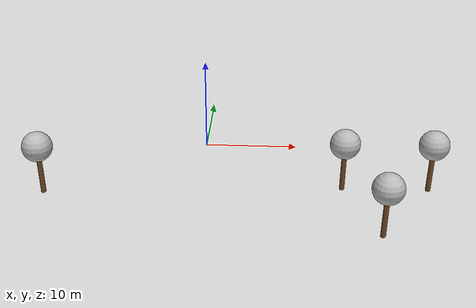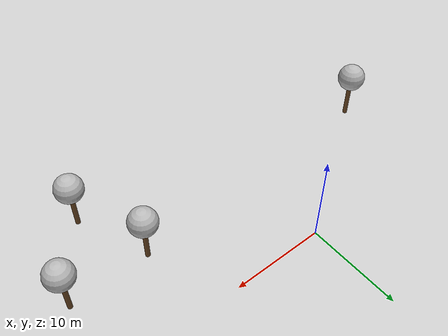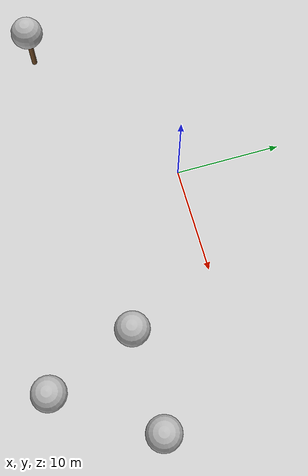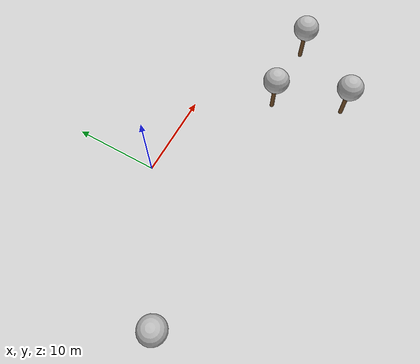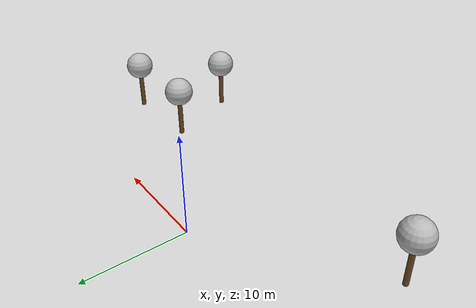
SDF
<sdf version="1.7">
 <world name="default">
  <model name="tree_simple_0_clone_0_clone_clone_4">
   <static>1</static>
   <link name="link">
    <pose>0 0 0.1 0 -0 0</pose>
    <inertial>
     <mass>666</mass>
     <inertia>
      <ixx>0.0861167</ixx>
      <ixy>0</ixy>
      <ixz>0</ixz>
      <iyy>0.0861167</iyy>
      <iyz>0</iyz>
      <izz>0.0861167</izz>
     </inertia>
    </inertial>
    <collision name="collision_trunk">
     <pose>0 0 2 0 -0 0</pose>
     <geometry><cylinder><radius>0.25</radius><length>4</length></cylinder></geometry>
     <surface>
      <contact>
       <poissons_ratio>0.347</poissons_ratio>
       <elastic_modulus>8.8e+09</elastic_modulus>
       <ode><kp>100000</kp><kd>100</kd><max_vel>100</max_vel><min_depth>0.001</min_depth></ode>
      </contact>
      <friction>
       <torsional>
        <coefficient>1</coefficient>
        <use_patch_radius>0</use_patch_radius>
        <surface_radius>0.01</surface_radius>
       </torsional>
      </friction>
     </surface>
    </collision>
    <collision name="collision_treetop">
     <pose>0 0 5.2 0 -0 0</pose>
     <geometry><sphere><radius>1.5</radius></sphere></geometry>
     <surface>
      <contact>
       <poissons_ratio>0.347</poissons_ratio>
       <elastic_modulus>8.8e+09</elastic_modulus>
       <ode><kp>100000</kp><kd>100</kd><max_vel>100</max_vel><min_depth>0.001</min_depth></ode>
      </contact>
      <friction>
       <torsional>
        <coefficient>1</coefficient>
        <use_patch_radius>0</use_patch_radius>
        <surface_radius>0.01</surface_radius>
       </torsional>
      </friction>
     </surface>
    </collision>
    <visual name="trunk">
     <pose>0 0 2 0 -0 0</pose>
     <geometry><cylinder><radius>0.25</radius><length>4</length></cylinder></geometry>
     <material>
      <script>
       <uri>model://tree_simple/scripts</uri>
       <uri>model://tree_simple/materials/textures</uri>
       <name>TreeSimple/Trunk</name>
      </script>
     </material>
    </visual>
    <visual name="treetop">
     <pose>0 0 5.2 0 -0 0</pose>
     <geometry><sphere><radius>1.5</radius></sphere></geometry>
     <material>
      <script>
       <uri>model://tree_simple/scripts</uri>
       <uri>model://tree_simple/materials/textures</uri>
       <name>TreeSimple/Treetop</name>
      </script>
     </material>
    </visual>
   </link>
   <pose>17.7345 -16.0914 0 0 -0 0</pose>
  </model>
  <model name="tree_simple_0_clone_0_clone_clone_9">
   <static>1</static>
   <link name="link">
    <pose>0 0 0.1 0 -0 0</pose>
    <inertial>
     <mass>666</mass>
     <inertia>
      <ixx>0.0861167</ixx>
      <ixy>0</ixy>
      <ixz>0</ixz>
      <iyy>0.0861167</iyy>
      <iyz>0</iyz>
      <izz>0.0861167</izz>
     </inertia>
    </inertial>
    <collision name="collision_trunk">
     <pose>0 0 2 0 -0 0</pose>
     <geometry><cylinder><radius>0.25</radius><length>4</length></cylinder></geometry>
     <surface>
      <contact>
       <poissons_ratio>0.347</poissons_ratio>
       <elastic_modulus>8.8e+09</elastic_modulus>
       <ode><kp>100000</kp><kd>100</kd><max_vel>100</max_vel><min_depth>0.001</min_depth></ode>
      </contact>
      <friction>
       <torsional>
        <coefficient>1</coefficient>
        <use_patch_radius>0</use_patch_radius>
        <surface_radius>0.01</surface_radius>
       </torsional>
      </friction>
     </surface>
    </collision>
    <collision name="collision_treetop">
     <pose>0 0 5.2 0 -0 0</pose>
     <geometry><sphere><radius>1.5</radius></sphere></geometry>
     <surface>
      <contact>
       <poissons_ratio>0.347</poissons_ratio>
       <elastic_modulus>8.8e+09</elastic_modulus>
       <ode><kp>100000</kp><kd>100</kd><max_vel>100</max_vel><min_depth>0.001</min_depth></ode>
      </contact>
      <friction>
       <torsional>
        <coefficient>1</coefficient>
        <use_patch_radius>0</use_patch_radius>
        <surface_radius>0.01</surface_radius>
       </torsional>
      </friction>
     </surface>
    </collision>
    <visual name="trunk">
     <pose>0 0 2 0 -0 0</pose>
     <geometry><cylinder><radius>0.25</radius><length>4</length></cylinder></geometry>
     <material>
      <script>
       <uri>model://tree_simple/scripts</uri>
       <uri>model://tree_simple/materials/textures</uri>
       <name>TreeSimple/Trunk</name>
      </script>
     </material>
    </visual>
    <visual name="treetop">
     <pose>0 0 5.2 0 -0 0</pose>
     <geometry><sphere><radius>1.5</radius></sphere></geometry>
     <material>
      <script>
       <uri>model://tree_simple/scripts</uri>
       <uri>model://tree_simple/materials/textures</uri>
       <name>TreeSimple/Treetop</name>
      </script>
     </material>
    </visual>
   </link>
   <pose>-15.5349 -10.5426 0 0 -0 0</pose>
  </model>
  <model name="tree_simple_0_clone_0_clone_clone_2_clone">
   <static>1</static>
   <link name="link">
    <pose>0 0 0.1 0 -0 0</pose>
    <inertial>
     <mass>666</mass>
     <inertia>
      <ixx>0.0861167</ixx>
      <ixy>0</ixy>
      <ixz>0</ixz>
      <iyy>0.0861167</iyy>
      <iyz>0</iyz>
      <izz>0.0861167</izz>
     </inertia>
    </inertial>
    <collision name="collision_trunk">
     <pose>0 0 2 0 -0 0</pose>
     <geometry><cylinder><radius>0.25</radius><length>4</length></cylinder></geometry>
     <surface>
      <contact>
       <poissons_ratio>0.347</poissons_ratio>
       <elastic_modulus>8.8e+09</elastic_modulus>
       <ode><kp>100000</kp><kd>100</kd><max_vel>100</max_vel><min_depth>0.001</min_depth></ode>
      </contact>
      <friction>
       <torsional>
        <coefficient>1</coefficient>
        <use_patch_radius>0</use_patch_radius>
        <surface_radius>0.01</surface_radius>
       </torsional>
      </friction>
     </surface>
    </collision>
    <collision name="collision_treetop">
     <pose>0 0 5.2 0 -0 0</pose>
     <geometry><sphere><radius>1.5</radius></sphere></geometry>
     <surface>
      <contact>
       <poissons_ratio>0.347</poissons_ratio>
       <elastic_modulus>8.8e+09</elastic_modulus>
       <ode><kp>100000</kp><kd>100</kd><max_vel>100</max_vel><min_depth>0.001</min_depth></ode>
      </contact>
      <friction>
       <torsional>
        <coefficient>1</coefficient>
        <use_patch_radius>0</use_patch_radius>
        <surface_radius>0.01</surface_radius>
       </torsional>
      </friction>
     </surface>
    </collision>
    <visual name="trunk">
     <pose>0 0 2 0 -0 0</pose>
     <geometry><cylinder><radius>0.25</radius><length>4</length></cylinder></geometry>
     <material>
      <script>
       <uri>model://tree_simple/scripts</uri>
       <uri>model://tree_simple/materials/textures</uri>
       <name>TreeSimple/Trunk</name>
      </script>
     </material>
    </visual>
    <visual name="treetop">
     <pose>0 0 5.2 0 -0 0</pose>
     <geometry><sphere><radius>1.5</radius></sphere></geometry>
     <material>
      <script>
       <uri>model://tree_simple/scripts</uri>
       <uri>model://tree_simple/materials/textures</uri>
       <name>TreeSimple/Treetop</name>
      </script>
     </material>
    </visual>
   </link>
   <pose>14.4993 -8.32763 0 0 -0 0</pose>
  </model>
  <model name="tree_simple_0_clone_0_clone_clone_2_clone_0">
   <static>1</static>
   <link name="link">
    <pose>0 0 0.1 0 -0 0</pose>
    <inertial>
     <mass>666</mass>
     <inertia>
      <ixx>0.0861167</ixx>
      <ixy>0</ixy>
      <ixz>0</ixz>
      <iyy>0.0861167</iyy>
      <iyz>0</iyz>
      <izz>0.0861167</izz>
     </inertia>
    </inertial>
    <collision name="collision_trunk">
     <pose>0 0 2 0 -0 0</pose>
     <geometry><cylinder><radius>0.25</radius><length>4</length></cylinder></geometry>
     <surface>
      <contact>
       <poissons_ratio>0.347</poissons_ratio>
       <elastic_modulus>8.8e+09</elastic_modulus>
       <ode><kp>100000</kp><kd>100</kd><max_vel>100</max_vel><min_depth>0.001</min_depth></ode>
      </contact>
      <friction>
       <torsional>
        <coefficient>1</coefficient>
        <use_patch_radius>0</use_patch_radius>
        <surface_radius>0.01</surface_radius>
       </torsional>
      </friction>
     </surface>
    </collision>
    <collision name="collision_treetop">
     <pose>0 0 5.2 0 -0 0</pose>
     <geometry><sphere><radius>1.5</radius></sphere></geometry>
     <surface>
      <contact>
       <poissons_ratio>0.347</poissons_ratio>
       <elastic_modulus>8.8e+09</elastic_modulus>
       <ode><kp>100000</kp><kd>100</kd><max_vel>100</max_vel><min_depth>0.001</min_depth></ode>
      </contact>
      <friction>
       <torsional>
        <coefficient>1</coefficient>
        <use_patch_radius>0</use_patch_radius>
        <surface_radius>0.01</surface_radius>
       </torsional>
      </friction>
     </surface>
    </collision>
    <visual name="trunk">
     <pose>0 0 2 0 -0 0</pose>
     <geometry><cylinder><radius>0.25</radius><length>4</length></cylinder></geometry>
     <material>
      <script>
       <uri>model://tree_simple/scripts</uri>
       <uri>model://tree_simple/materials/textures</uri>
       <name>TreeSimple/Trunk</name>
      </script>
     </material>
    </visual>
    <visual name="treetop">
     <pose>0 0 5.2 0 -0 0</pose>
     <geometry><sphere><radius>1.5</radius></sphere></geometry>
     <material>
      <script>
       <uri>model://tree_simple/scripts</uri>
       <uri>model://tree_simple/materials/textures</uri>
       <name>TreeSimple/Treetop</name>
      </script>
     </material>
    </visual>
   </link>
   <pose>23.1635 -8.10358 0 0 -0 0</pose>
  </model>
 </world>
</sdf>
